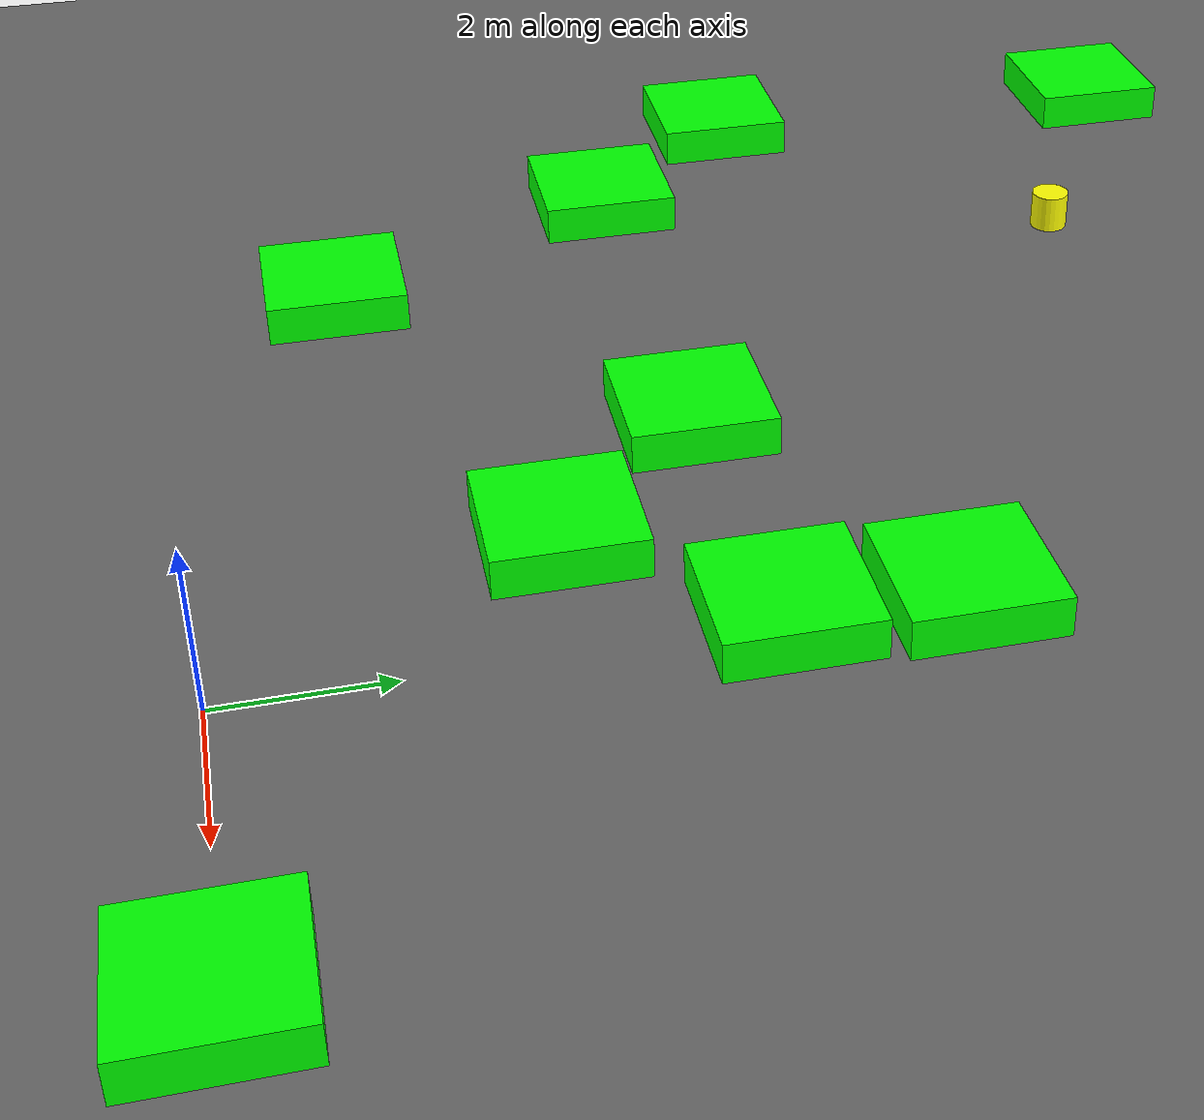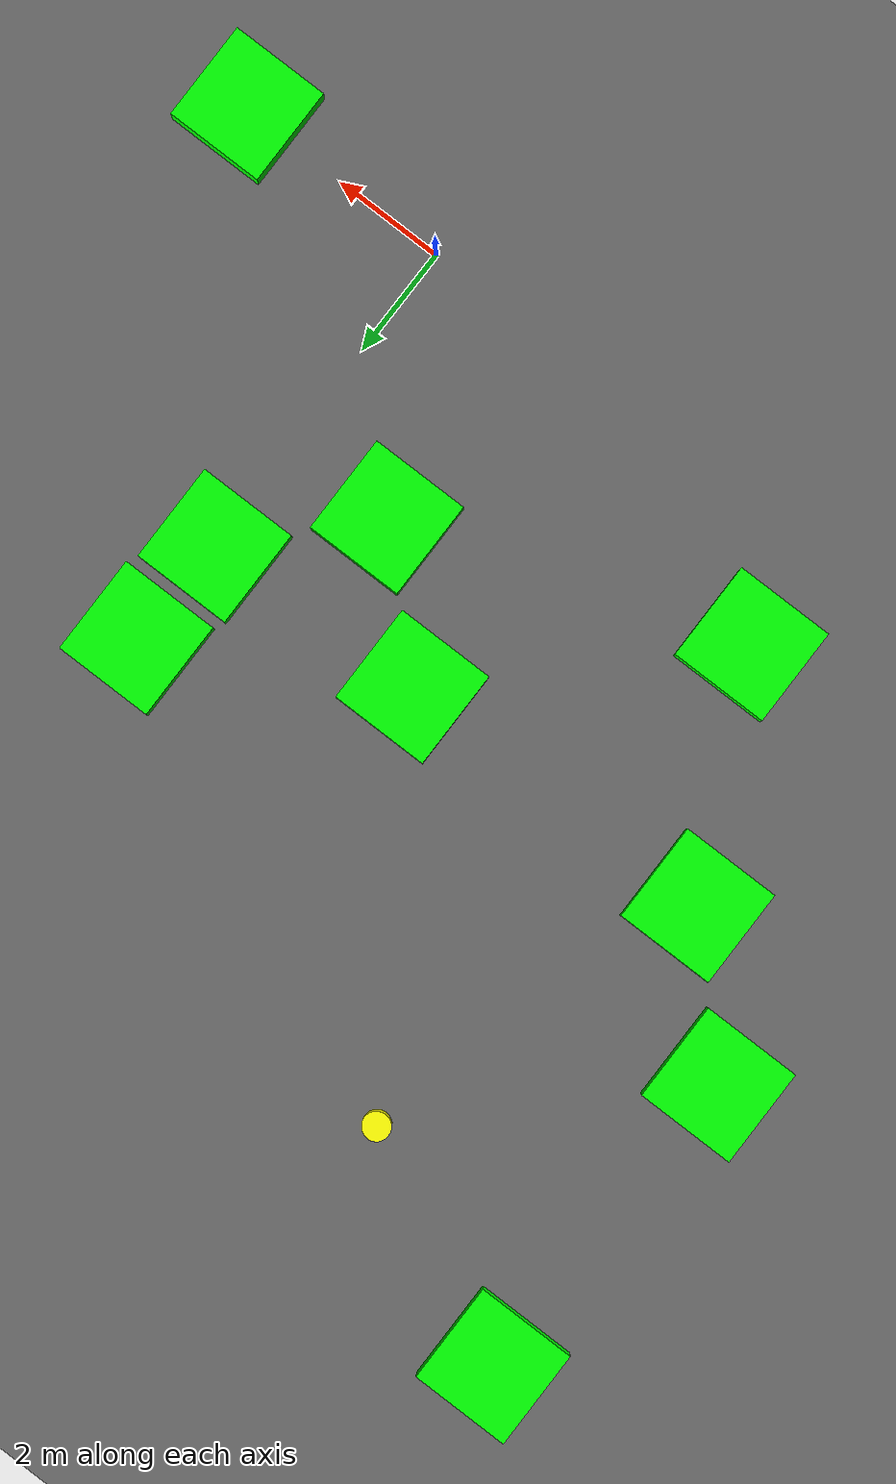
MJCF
<mujoco model="lvl4_standard_obs9_d2mid_seed2036">
    <compiler angle="degree" coordinate="local" inertiafromgeom="true"/>
    <option integrator="RK4" timestep="0.01"/>

    <asset>
        <texture builtin="gradient" height="100" rgb1="0.6 0.8 1" rgb2="0 0 0" type="skybox" width="100"/>
        <texture name="floor_texture" type="2d" builtin="checker" width="100" height="100" rgb1="0 0 0" rgb2="0.8 0.8 0.8"/>
        <material name="MatPlane" reflectance="0.5" shininess="1" specular="1" texrepeat="10 10" texture="floor_texture"/>
    </asset>

    <!-- Excluding the contact between the agent and the goal, and the agent and the floor -->
    <contact>
        <exclude body1="agent" body2="goal"/>
        <exclude body1 = "agent" body2 = "floor"/>
    </contact>

    <extension>
        <plugin plugin = "mujoco.pid">
            <instance name = "pid1">
                <config key="kp" value="2"/>
                <config key="ki" value="0"/>
                <config key="kd" value="55"/>
            </instance>
        </plugin>
    </extension>

    <worldbody>
        <light cutoff="100" diffuse="1 1 1" dir="-0 0 -1.3" directional="true" exponent="1" pos="0 0 1.3" specular=".1 .1 .1"/>
        <body name="floor" pos="0 0 0">
            <geom name="floor_geom" type="plane" size="20 20 0.1" material="MatPlane"/>
        </body>

                <body name="goal" pos="0.0000 0.0000 0">
            <geom name="goal_geom" type="plane" size="0.5 0.5 1" pos="0 0 0" rgba="1 0 0 1"/>
        </body>

                <body name="agent" pos="-8.0000 12.0000 0.250">
            <joint name="j1" type="slide" axis ="1 0 0 "/>
            <joint name="j2" type="slide" axis ="0 1 0 "/>
            <geom name="agent_geom" type="cylinder" size="0.25 0.25 0.250" rgba="1 1 0 1"/>
        </body>

        <body name="obstacle1" pos="-11.9002 13.9418 0.250">  <geom name="obstacle1_geom" type="box" size="0.9000 0.9000 0.250" rgba="0 1 0 1"/></body>
        <body name="obstacle2" pos="-12.0303 8.0513 0.250">  <geom name="obstacle2_geom" type="box" size="0.9000 0.9000 0.250" rgba="0 1 0 1"/></body>
        <body name="obstacle3" pos="0.0104 8.0591 0.250">  <geom name="obstacle3_geom" type="box" size="0.9000 0.9000 0.250" rgba="0 1 0 1"/></body>
        <body name="obstacle4" pos="-9.9759 5.9248 0.250">  <geom name="obstacle4_geom" type="box" size="0.9000 0.9000 0.250" rgba="0 1 0 1"/></body>
        <body name="obstacle5" pos="-4.0755 5.9335 0.250">  <geom name="obstacle5_geom" type="box" size="0.9000 0.9000 0.250" rgba="0 1 0 1"/></body>
        <body name="obstacle6" pos="-0.0845 6.0739 0.250">  <geom name="obstacle6_geom" type="box" size="0.9000 0.9000 0.250" rgba="0 1 0 1"/></body>
        <body name="obstacle7" pos="-2.0441 3.9782 0.250">  <geom name="obstacle7_geom" type="box" size="0.9000 0.9000 0.250" rgba="0 1 0 1"/></body>
        <body name="obstacle8" pos="-8.0694 1.9802 0.250">  <geom name="obstacle8_geom" type="box" size="0.9000 0.9000 0.250" rgba="0 1 0 1"/></body>
        <body name="obstacle9" pos="3.9486 -0.0342 0.250">  <geom name="obstacle9_geom" type="box" size="0.9000 0.9000 0.250" rgba="0 1 0 1"/></body>

    </worldbody>

    <sensor>
<!-- SENSORS -->

        <distance name="dist1" geom1="agent_geom" geom2="obstacle1_geom" cutoff="1.5"/>
        <distance name="dist2" geom1="agent_geom" geom2="obstacle2_geom" cutoff="1.5"/>
        <distance name="dist3" geom1="agent_geom" geom2="obstacle3_geom" cutoff="1.5"/>
        <distance name="dist4" geom1="agent_geom" geom2="obstacle4_geom" cutoff="1.5"/>
        <distance name="dist5" geom1="agent_geom" geom2="obstacle5_geom" cutoff="1.5"/>
        <distance name="dist6" geom1="agent_geom" geom2="obstacle6_geom" cutoff="1.5"/>
        <distance name="dist7" geom1="agent_geom" geom2="obstacle7_geom" cutoff="1.5"/>
        <distance name="dist8" geom1="agent_geom" geom2="obstacle8_geom" cutoff="1.5"/>
        <distance name="dist9" geom1="agent_geom" geom2="obstacle9_geom" cutoff="1.5"/>
</sensor>

    <actuator>
        <plugin joint="j1" plugin="mujoco.pid" instance="pid1" />
        <plugin joint="j2" plugin="mujoco.pid" instance="pid1"/>
    </actuator>
</mujoco>
